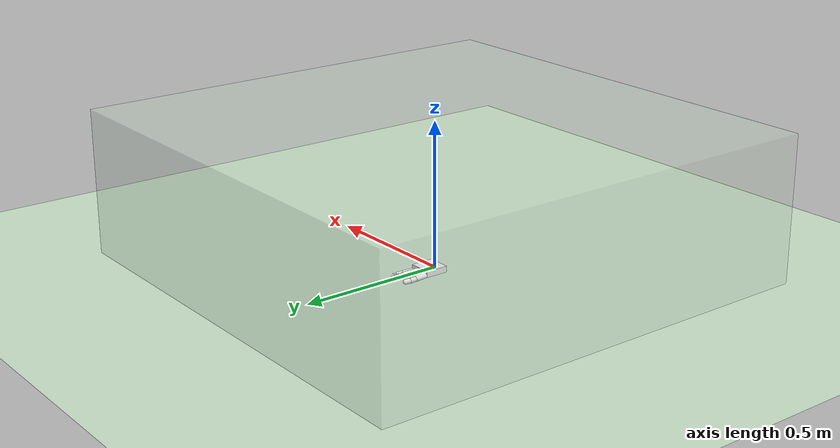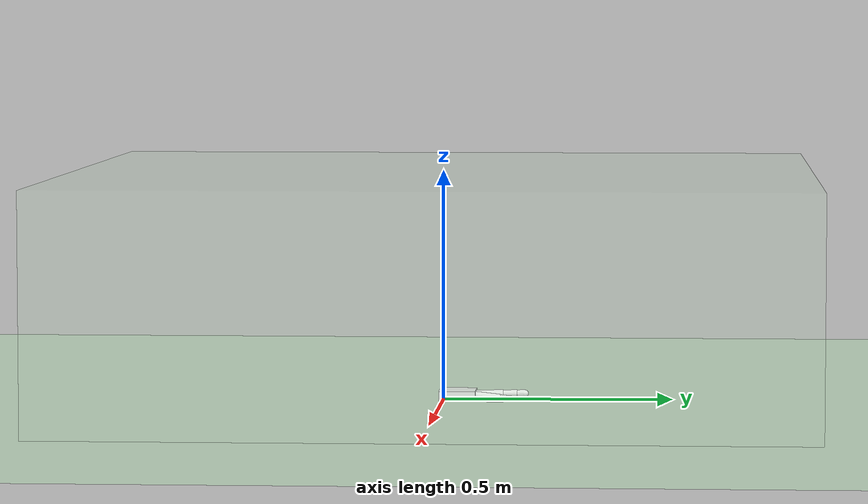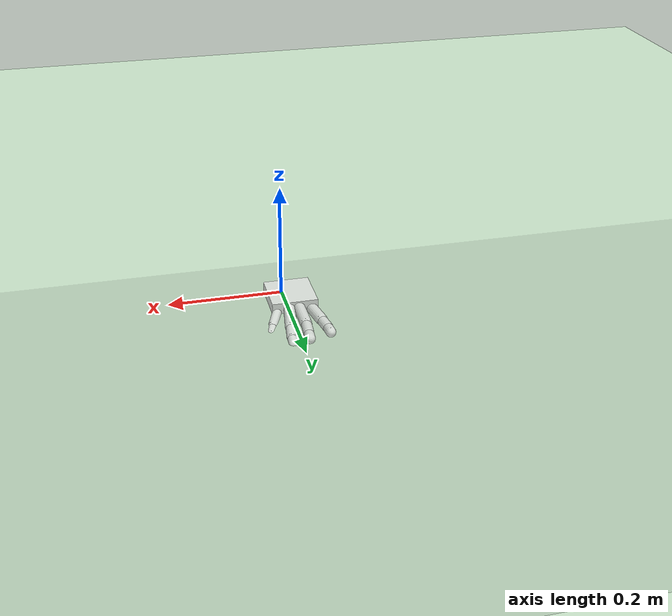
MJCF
<?xml version="1.0" encoding="utf-8"?>
<mujoco>
    <compiler angle="radian" coordinate="local"/>
    <option timestep="0.002" iterations="20" apirate="200">
        <flag warmstart="enable"/>
    </option>

    <size njmax="2000" nconmax="1000" nuser_jnt="1" nuser_site="1" nuser_tendon="1" nuser_sensor="1" nuser_actuator="16"
          nstack="600000"/>

    <visual>
        <map fogstart="3" fogend="5" force="0.1"></map>
    </visual>

    <default>
        <default class="robot0:asset_class">
            <geom friction="1 0.005 0.001" condim="3" margin="0.0005" contype="1" conaffinity="1"></geom>
            <joint limited="true" damping="0.1" armature="0.001" margin="0.01" frictionloss="0.001"></joint>
            <site size="0.005" rgba="0.4 0.9 0.4 1"></site>
            <general ctrllimited="true" forcelimited="true"></general>
        </default>
        <default class="robot0:D_Touch">
            <site type="box" size="0.009 0.004 0.013" pos="0 -0.004 0.018" rgba="0.8 0.8 0.8 0.15" group="4"></site>
        </default>
        <default class="robot0:DC_Hand">
            <geom material="robot0:MatColl" contype="1" conaffinity="0" group="1"></geom>
        </default>
        <default class="robot0:D_Vizual">
            <geom material="robot0:MatViz" contype="0" conaffinity="0" group="1" type="mesh"></geom>
        </default>
        <default class="robot0:free">
            <joint type="free" damping="0" armature="0" limited="false"></joint>
        </default>
        <default class="robot1:asset_class">
            <geom contype="1" conaffinity="1"></geom>
        </default>
        <default class="robot1:DC_Hand">
            <geom material="robot1:MatColl" contype="1" conaffinity="0" group="2"></geom>
        </default>
        <default class="robot1:D_Vizual">
            <geom material="robot1:MatViz" contype="0" conaffinity="0" group="2" type="mesh"></geom>
        </default>
        <default class="robot1:free">
            <joint type="free" damping="0" armature="0" limited="false"></joint>
        </default>
        <default class="robot2:asset_class">
            <geom contype="0" conaffinity="0"></geom>
        </default>
        <default class="robot2:DC_Hand">
            <geom material="robot2:MatColl" contype="0" conaffinity="0" group="2"></geom>
        </default>
        <default class="robot2:D_Vizual">
            <geom material="robot2:MatViz" contype="0" conaffinity="0" group="1" type="mesh"></geom>
        </default>
        <default class="robot2:free">
            <joint type="free" damping="0" armature="0" limited="false"></joint>
        </default>
    </default>

    <contact>
    </contact>

    <actuator>
    </actuator>

    <asset>
        <texture type="skybox" builtin="gradient" rgb1="0.44 0.85 0.56" rgb2="0.46 0.87 0.58" width="32" height="32"/>

        <texture name="robot0:texplane" type="2d" builtin="checker" rgb1="0.2 0.3 0.4" rgb2="0.1 0.15 0.2" width="512"
                 height="512"/>
        <texture name="robot0:texgeom" type="cube" builtin="flat" mark="cross" width="127" height="127" rgb1="0.3 0.6 0.5"
                 rgb2="0.3 0.6 0.5" markrgb="0 0 0" random="0.01"/>

        <material name="robot0:MatGnd" reflectance="0.5" texture="robot0:texplane" texrepeat="1 1" texuniform="true"/>
        <material name="robot0:MatColl" specular="1" shininess="0.3" reflectance="0.1" rgba="1.0 1.0 1.0 1.0"/>
        <material name="robot0:MatViz" specular="0.75" shininess="0.1" reflectance="0.5" rgba="0.93 0.93 0.93 1"/>
        <material name="robot1:MatGnd" reflectance="0.5" texture="robot0:texplane" texrepeat="1 1" texuniform="true"/>
        <material name="robot1:MatColl" specular="1" shininess="0.3" reflectance="0.1" rgba="1.0 1.0 1.0 1.0"/>
        <material name="robot1:MatViz" specular="0.75" shininess="0.1" reflectance="0.5" rgba="1.0 0.1 0.1 1"/>
        <material name="robot0:object" texture="robot0:texgeom" texuniform="false"/>
        <material name="floor_mat" specular="0" shininess="0.5" reflectance="0" rgba="0.2 0.2 0.2 0"/>
        <material name="MatPlane" reflectance="0.0" shininess="1" specular="1" texrepeat="60 60" texture="robot0:texplane"/>

        <mesh name="palm" file="../stls/manohand/palm_mean.stl"/>
        <mesh name="ffdist" file="../stls/manohand/ffdist_mean.stl"/>
        <mesh name="ffmiddle" file="../stls/manohand/ffmiddle_mean.stl"/>
        <mesh name="ffprox" file="../stls/manohand/ffprox_mean.stl"/>
        <mesh name="lfdist" file="../stls/manohand/lfdist_mean.stl"/>
        <mesh name="lfmiddle" file="../stls/manohand/lfmiddle_mean.stl"/>
        <mesh name="lfprox" file="../stls/manohand/lfprox_mean.stl"/>
        <mesh name="mfdist" file="../stls/manohand/mfdist_mean.stl"/>
        <mesh name="mfmiddle" file="../stls/manohand/mfmiddle_mean.stl"/>
        <mesh name="mfprox" file="../stls/manohand/mfprox_mean.stl"/>
        <mesh name="rfdist" file="../stls/manohand/rfdist_mean.stl"/>
        <mesh name="rfmiddle" file="../stls/manohand/rfmiddle_mean.stl"/>
        <mesh name="rfprox" file="../stls/manohand/rfprox_mean.stl"/>
        <mesh name="thdist" file="../stls/manohand/thdist_mean.stl"/>
        <mesh name="thmiddle" file="../stls/manohand/thmiddle_mean.stl"/>
        <mesh name="thprox" file="../stls/manohand/thprox_mean.stl"/>
    </asset>

    <worldbody>
        <camera pos="-0.0257 -0.004077 0.7" euler="1.57 0 0" fovy="42"/>
        <geom conaffinity="1" condim="3" name="floor" pos="0 0 0" rgba="0.8 0.9 0.8 1" size="100 100 .2" type="plane" material="MatPlane"/>
        <body name="table">
            <geom name="C_Table" type="box" size="0.8 0.8 0.25" rgba="0.8 0.9 0.8 0.3" pos="0 0 0.25" condim="4" contype="1" conaffinity="0" />
        </body>
        <body name="handworld" pos="0 0 0" euler="0 0 0">
            <body name="link_palm" pos="0 0 0" euler="0 0 0" childclass="robot0:asset_class">
            <joint name="robot0:slide0" type="slide" pos="0 0 0" axis="1 0 0" range="-2.0 2.0" armature="0.005"></joint>
            <joint name="robot0:slide1" type="slide" pos="0 0 0" axis="0 1 0" range="-2.0 2.0" armature="0.005"></joint>
            <joint name="robot0:slide2" type="slide" pos="0 0 0" axis="0 0 1" range="0.2 2.0" armature="0.005"></joint>
            <joint name="robot0:WRJ0" type="hinge" pos="0 0 0" axis="1 0 0" range="-3.14 3.14" armature="0.005" user="1123"></joint>
            <joint name="robot0:WRJ1" type="hinge" pos="0 0 0" axis="0 1 0" range="-1.57 1.57" armature="0.005" user="1123"></joint>
            <joint name="robot0:WRJ2" type="hinge" pos="0 0 0" axis="0 0 1" range="-3.14 3.14" armature="0.005" user="1123"></joint>
            <inertial pos="-0.03 0 0" euler="0 0 0.2" mass="0.3" diaginertia="0.001 0.001 0.001"/>
            <geom class="robot0:DC_Hand" name="robot0:C_palm0" type="box" pos="-0.01 0.03 0.005" size="0.04 0.04 0.0135" euler="0 0 0"></geom>
            <body name="link_ff_pm" quat="0.124112 -0.0723957  0.989102 0.0321224" pos="-0.0394865 0.0673819 0.0011229">
                <joint name="robot0:FFJ3x" type="hinge" pos="0 0 0" axis="1 0 0" range="-1.3 1.6" armature="0.005" user="1123"></joint>
                <joint name="robot0:FFJ3z" type="hinge" pos="0 0 0" axis="0 0 1" range="-0.35 0.3" armature="0.005" user="1123"></joint>
                <inertial pos="0 0.0228296 0" mass="0.014" diaginertia="1e-05 1e-05 1e-05"></inertial>
                <geom class="robot0:DC_Hand" name="robot0:C_FF3" type="capsule" euler="1.57 0 0" pos="0 0.0228296 0" size="0.01 0.0228296"></geom>
                <body name="link_ff_md" quat="-0.999945 0 0 -0.0104861" pos="0 0.0456592 0">
                    <inertial pos="0 0.0136348 0" mass="0.012" diaginertia="1e-05 1e-05 1e-05"></inertial>
                    <joint name="robot0:FFJ2x" type="hinge" pos="0 0 0" axis="1 0 0" range="-0.1 2.0" armature="0.005" user="1123"></joint>
                    <geom class="robot0:DC_Hand" name="robot0:C_FF2" type="capsule" euler="1.57 0 0" pos="0 0.0136348 0" size="0.009 0.0136348"></geom>
                    <body name="link_ff_dd" quat="-0.9992 0 0 -0.0399893" pos="0 0.0272696 0">
                        <inertial pos="0 0.0093181 0" mass="0.01" diaginertia="1e-05 1e-05 1e-05"></inertial>
                        <joint name="robot0:FFJ1x" type="hinge" pos="0 0 0" axis="1 0 0" range="-0.1 2.0" armature="0.005" user="1123"></joint>
                        <geom class="robot0:DC_Hand" name="robot0:C_FF1" type="capsule" euler="1.57 0 0" pos="0 0.0093181 0" size="0.0085 0.0093181"></geom>
                        <body name="link_ff_tip" pos="0.001204 0.018596 0.000187">
                            <inertial pos="0 0 0" euler="0 0 0" mass="0.001" diaginertia="1e-06 1e-06 1e-06"></inertial>
                        </body>
                    </body>
                </body>
            </body>
            <body name="link_mf_pm" quat="0.0601268 0.0089805 0.998009 0.0168109" pos="-0.017018 0.0703726 0.00635547">
                <inertial pos="0 0.02810025 0" mass="0.014" diaginertia="1e-05 1e-05 1e-05"></inertial>
                <joint name="robot0:MFJ3x" type="hinge" pos="0 0 0" axis="1 0 0" range="-1.3 1.6" armature="0.005" user="1123"></joint>
                <joint name="robot0:MFJ3z" type="hinge" pos="0 0 0" axis="0 0 1" range="-0.4 0.3" armature="0.005" user="1123"></joint>
                <geom class="robot0:DC_Hand" name="robot0:C_MF3" type="capsule" euler="1.57 0 0" pos="0 0.02810025 0" size="0.01 0.02810025"></geom>
                <body name="link_mf_md" quat="-0.999229 0 0 -0.0392598" pos="0 0.0562005 0">
                    <inertial pos="0 0.0160573 0" mass="0.012" diaginertia="1e-05 1e-05 1e-05"></inertial>
                    <joint name="robot0:MFJ2x" type="hinge" pos="0 0 0" axis="1 0 0" range="-0.1 2.0" armature="0.005" user="1123"></joint>
                    <geom class="robot0:DC_Hand" name="robot0:C_MF2" type="capsule" euler="1.57 0 0" pos="0 0.0160573 0" size="0.009 0.0160573"></geom>
                    <body name="link_mf_dd" quat="-0.999973 0 0 0.0073836" pos="0 0.0321146 0">
                        <inertial pos="0 0.00917255 0" mass="0.01" diaginertia="1e-05 1e-05 1e-05"></inertial>
                        <joint name="robot0:MFJ1x" type="hinge" pos="0 0 0" axis="1 0 0" range="-0.1 2.0" armature="0.005" user="1123"></joint>
                        <geom class="robot0:DC_Hand" name="robot0:C_MF1" type="capsule" euler="1.57 0 0" pos="0 0.00917255 0" size="0.0085 0.00917255"></geom>
                        <body name="link_mf_tip" pos="-0.000537 0.01830 0.00121">
                            <inertial pos="0 0 0" euler="0 0 0" mass="0.001" diaginertia="1e-06 1e-06 1e-06"></inertial>
                        </body>
                    </body>
                </body>
            </body>
            <body name="link_lf_pm" quat="-0.102886 0.198238 0.97371 -0.0447794" pos="0.0213338 0.0665155 0.000943775">
                <joint name="robot0:LFJ3x" type="hinge" pos="0 0 0" axis="1 0 0" range="-1.3 1.6" armature="0.005" user="1123"></joint>
                <joint name="robot0:LFJ3z" type="hinge" pos="0 0 0" axis="0 0 1" range="-0.65 0.2" armature="0.005" user="1123"></joint>
                <inertial pos="0 0.01892845 0" mass="0.07" diaginertia="0.0005 0.0005 0.0005"/>
                <geom class="robot0:DC_Hand" name="robot0:C_LF3" type="capsule" euler="1.57 0 0" pos="0 0.01892845 0" size="0.008 0.01892845"></geom>
                <body name="link_lf_md" quat="-0.99963 0 0 0.0271924" pos="0 0.0378569 0">
                    <inertial pos="0 0.0111746 0" mass="0.06" diaginertia="0.0005 0.0005 0.0005"/>
                    <joint name="robot0:LFJ2x" type="hinge" pos="0 0 0" axis="1 0 0" range="-0.1 2.0" armature="0.005" user="1123"></joint>
                    <geom class="robot0:DC_Hand" name="robot0:C_LF2" type="capsule" euler="1.57 0 0" pos="0 0.0111746 0" size="0.007 0.0111746"></geom>
                    <body name="link_lf_dd" quat="-0.999229 0 0 0.0392598" pos="0 0.0223492 0">
                        <inertial pos="0 0.007704 0" mass="0.05" diaginertia="0.0005 0.0005 0.0005"/>
                        <joint name="robot0:LFJ1x" type="hinge" pos="0 0 0" axis="1 0 0" range="-0.1 2.0" armature="0.005" user="1123"></joint>
                        <geom class="robot0:DC_Hand" name="robot0:C_LF1" type="capsule" euler="1.57 0 0" pos="0 0.007704 0" size="0.006 0.007704"></geom>
                        <body name="link_lf_tip" pos="0.0002265 0.01531 0.001613">
                            <inertial pos="0 0 0" euler="0 0 0" mass="0.001" diaginertia="1e-06 1e-06 1e-06"></inertial>
                        </body>
                    </body>
                </body>
            </body>
            <body name="link_rf_pm" quat="-0.00348342 0.0794858 0.995874 -0.0436436" pos="0.000347831 0.0693786 0.00601275">
                <joint name="robot0:RFJ3x" type="hinge" pos="0 0 0" axis="1 0 0" range="-1.3 1.6" armature="0.005" user="1123"></joint>
                <joint name="robot0:RFJ3z" type="hinge" pos="0 0 0" axis="0 0 1" range="-0.3 0.1" armature="0.005" user="1123"></joint>
                <inertial pos="0 0.02588765 0" mass="0.014" diaginertia="1e-05 1e-05 1e-05"></inertial>
                <geom class="robot0:DC_Hand" name="robot0:C_RF3" type="capsule" euler="1.57 0 0" pos="0 0.02588765 0" size="0.01 0.02588765"></geom>
                <body name="link_rf_md" quat="-0.999981 0 0 0.00624612" pos="0 0.0517753 0">
                    <inertial pos="0 0.01479295 0" mass="0.012" diaginertia="1e-05 1e-05 1e-05"></inertial>
                    <joint name="robot0:RFJ2x" type="hinge" pos="0 0 0" axis="1 0 0" range="-0.1 2.0" armature="0.005" user="1123"></joint>
                    <geom class="robot0:DC_Hand" name="robot0:C_RF2" type="capsule" euler="1.57 0 0" pos="0 0.01479295 0" size="0.009 0.01479295"></geom>
                    <body name="link_rf_dd" quat="-0.999229 0 0 0.0392598" pos="0 0.0295859 0">
                        <inertial pos="0 0.0084531 0" mass="0.01" diaginertia="1e-05 1e-05 1e-05"></inertial>
                        <joint name="robot0:RFJ1x" type="hinge" pos="0 0 0" axis="1 0 0" range="-0.1 2.0" armature="0.005" user="1123"></joint>
                        <geom class="robot0:DC_Hand" name="robot0:C_RF1" type="capsule" euler="1.57 0 0" pos="0 0.0084531 0" size="0.0085 0.0084531"></geom>
                        <body name="link_rf_tip" pos="0.000591 0.01678 0.001933">
                            <inertial pos="0 0 0" euler="0 0 0" mass="0.001" diaginertia="1e-06 1e-06 1e-06"></inertial>
                        </body>
                    </body>
                </body>
            </body>
            <body name="link_th_pm" quat="-0.563478 0.172425  0.648492 -0.481892" pos="-0.0194548 0.00353334 -0.00776414">
                <joint name="robot0:THJ3x" type="hinge" pos="0 0 0" axis="1 0 0" range="-0.5 1.0" armature="0.005" user="1123"></joint>
                <joint name="robot0:THJ3z" type="hinge" pos="0 0 0" axis="0 0 1" range="-1.0 0.1" armature="0.005" user="1123"></joint>
                <inertial pos="0 0.02441495 0" mass="0.016" diaginertia="1e-05 1e-05 1e-05"></inertial>
                <geom class="robot0:DC_Hand" name="robot0:C_TH3" euler="1.57 0 0" type="capsule" pos="0 0.02441495 0" size="0.013 0.02441495"></geom>
                <body name="link_th_md" quat="-0.994276 0.0997603 -0.00381833 0.0380559" pos="0 0.0488299 0">
                    <joint name="robot0:THJ2x" type="hinge" pos="0 0 0" axis="1 0 0" range="-0.9 0.2" armature="0.005" user="1123"></joint>
                    <inertial pos="0 0.01749035 0" mass="0.014" diaginertia="1e-05 1e-05 1e-05"></inertial>
                    <geom class="robot0:DC_Hand" name="robot0:C_TH2" type="capsule" euler="1.57 0 0" pos="0 0.01749035 0" size="0.011 0.01749035"></geom>
                    <body name="link_th_dd" quat="-0.994683 0.0998011 0.00253618 -0.0252774" pos="0 0.0349807 0">
                        <joint name="robot0:THJ1x" type="hinge" pos="0 0 0" axis="1 0 0" range="-0.9 0.1" armature="0.005" user="1123"></joint>
                        <inertial pos="0 0.01241705 0" mass="0.012" diaginertia="1e-05 1e-05 1e-05"></inertial>
                        <geom class="robot0:DC_Hand" name="robot0:C_TH1" type="capsule" euler="1.57 0 0" pos="0 0.01241705 0" size="0.009 0.01241705"></geom>
                        <body name="link_th_tip" pos="0 0.01601 0.001388">
                            <inertial pos="0 0 0" euler="0 0 0" mass="0.001" diaginertia="1e-06 1e-06 1e-06"></inertial>
                        </body>
                    </body>
                </body>
            </body>
        </body>
        </body>
        <body name="handworld1" pos="0 0 0" euler="0 0 0">
            <body name="ref_link_palm" pos="0 0 0" euler="0 0 0" childclass="robot1:asset_class">
            <joint name="robot1:slide0" type="slide" pos="0 0 0" axis="1 0 0" range="-2.0 2.0" armature="0.005"></joint>
            <joint name="robot1:slide1" type="slide" pos="0 0 0" axis="0 1 0" range="-2.0 2.0" armature="0.005"></joint>
            <joint name="robot1:slide2" type="slide" pos="0 0 0" axis="0 0 1" range="0.2 2.0" armature="0.005"></joint>
            <joint name="robot1:WRJ0" type="hinge" pos="0 0 0" axis="1 0 0" range="-3.14 3.14" armature="0.005" user="1123"></joint>
            <joint name="robot1:WRJ1" type="hinge" pos="0 0 0" axis="0 1 0" range="-1.57 1.57" armature="0.005" user="1123"></joint>
            <joint name="robot1:WRJ2" type="hinge" pos="0 0 0" axis="0 0 1" range="-3.14 3.14" armature="0.005" user="1123"></joint>
            <inertial pos="-0.03 0 0" euler="0 0 0.2" mass="0.3" diaginertia="0.001 0.001 0.001"/>
            <geom class="robot1:DC_Hand" name="robot1:C_palm0" type="box" pos="-0.01 0.03 0.005" size="0.04 0.04 0.0135" euler="0 0 0"></geom>
            <body name="ref_link_ff_pm" quat="0.124112 -0.0723957  0.989102 0.0321224" pos="-0.0394865 0.0673819 0.0011229">
                <joint name="robot1:FFJ3x" type="hinge" pos="0 0 0" axis="1 0 0" range="-1.3 1.6" armature="0.005" user="1123"></joint>
                <joint name="robot1:FFJ3z" type="hinge" pos="0 0 0" axis="0 0 1" range="-0.35 0.3" armature="0.005" user="1123"></joint>
                <inertial pos="0 0.0228296 0" mass="0.014" diaginertia="1e-05 1e-05 1e-05"></inertial>
                <geom class="robot1:DC_Hand" name="robot1:C_FF3" type="capsule" euler="1.57 0 0" pos="0 0.0228296 0" size="0.01 0.0228296"></geom>
                <body name="ref_link_ff_md" quat="-0.999945 0 0 -0.0104861" pos="0 0.0456592 0">
                    <inertial pos="0 0.0136348 0" mass="0.012" diaginertia="1e-05 1e-05 1e-05"></inertial>
                    <joint name="robot1:FFJ2x" type="hinge" pos="0 0 0" axis="1 0 0" range="-0.1 2.0" armature="0.005" user="1123"></joint>
                    <geom class="robot1:DC_Hand" name="robot1:C_FF2" type="capsule" euler="1.57 0 0" pos="0 0.0136348 0" size="0.009 0.0136348"></geom>
                    <body name="ref_link_ff_dd" quat="-0.9992 0 0 -0.0399893" pos="0 0.0272696 0">
                        <inertial pos="0 0.0093181 0" mass="0.01" diaginertia="1e-05 1e-05 1e-05"></inertial>
                        <joint name="robot1:FFJ1x" type="hinge" pos="0 0 0" axis="1 0 0" range="-0.1 2.0" armature="0.005" user="1123"></joint>
                        <geom class="robot1:DC_Hand" name="robot1:C_FF1" type="capsule" euler="1.57 0 0" pos="0 0.0093181 0" size="0.0085 0.0093181"></geom>
                        <body name="ref_link_ff_tip" pos="0.001204 0.018596 0.000187">
                            <inertial pos="0 0 0" euler="0 0 0" mass="0.001" diaginertia="1e-06 1e-06 1e-06"></inertial>
                        </body>
                    </body>
                </body>
            </body>
            <body name="ref_link_mf_pm" quat="0.0601268 0.0089805 0.998009 0.0168109" pos="-0.017018 0.0703726 0.00635547">
                <inertial pos="0 0.02810025 0" mass="0.014" diaginertia="1e-05 1e-05 1e-05"></inertial>
                <joint name="robot1:MFJ3x" type="hinge" pos="0 0 0" axis="1 0 0" range="-1.3 1.6" armature="0.005" user="1123"></joint>
                <joint name="robot1:MFJ3z" type="hinge" pos="0 0 0" axis="0 0 1" range="-0.4 0.3" armature="0.005" user="1123"></joint>
                <geom class="robot1:DC_Hand" name="robot1:C_MF3" type="capsule" euler="1.57 0 0" pos="0 0.02810025 0" size="0.01 0.02810025"></geom>
                <body name="ref_link_mf_md" quat="-0.999229 0 0 -0.0392598" pos="0 0.0562005 0">
                    <inertial pos="0 0.0160573 0" mass="0.012" diaginertia="1e-05 1e-05 1e-05"></inertial>
                    <joint name="robot1:MFJ2x" type="hinge" pos="0 0 0" axis="1 0 0" range="-0.1 2.0" armature="0.005" user="1123"></joint>
                    <geom class="robot1:DC_Hand" name="robot1:C_MF2" type="capsule" euler="1.57 0 0" pos="0 0.0160573 0" size="0.009 0.0160573"></geom>
                    <body name="ref_link_mf_dd" quat="-0.999973 0 0 0.0073836" pos="0 0.0321146 0">
                        <inertial pos="0 0.00917255 0" mass="0.01" diaginertia="1e-05 1e-05 1e-05"></inertial>
                        <joint name="robot1:MFJ1x" type="hinge" pos="0 0 0" axis="1 0 0" range="-0.1 2.0" armature="0.005" user="1123"></joint>
                        <geom class="robot1:DC_Hand" name="robot1:C_MF1" type="capsule" euler="1.57 0 0" pos="0 0.00917255 0" size="0.0085 0.00917255"></geom>
                        <body name="ref_link_mf_tip" pos="-0.000537 0.01830 0.00121">
                            <inertial pos="0 0 0" euler="0 0 0" mass="0.001" diaginertia="1e-06 1e-06 1e-06"></inertial>
                        </body>
                    </body>
                </body>
            </body>
            <body name="ref_link_lf_pm" quat="-0.102886 0.198238 0.97371 -0.0447794" pos="0.0213338 0.0665155 0.000943775">
                <joint name="robot1:LFJ3x" type="hinge" pos="0 0 0" axis="1 0 0" range="-1.3 1.6" armature="0.005" user="1123"></joint>
                <joint name="robot1:LFJ3z" type="hinge" pos="0 0 0" axis="0 0 1" range="-0.65 0.2" armature="0.005" user="1123"></joint>
                <inertial pos="0 0.01892845 0" mass="0.07" diaginertia="0.0005 0.0005 0.0005"/>
                <geom class="robot1:DC_Hand" name="robot1:C_LF3" type="capsule" euler="1.57 0 0" pos="0 0.01892845 0" size="0.008 0.01892845"></geom>
                <body name="ref_link_lf_md" quat="-0.99963 0 0 0.0271924" pos="0 0.0378569 0">
                    <inertial pos="0 0.0111746 0" mass="0.06" diaginertia="0.0005 0.0005 0.0005"/>
                    <joint name="robot1:LFJ2x" type="hinge" pos="0 0 0" axis="1 0 0" range="-0.1 2.0" armature="0.005" user="1123"></joint>
                    <geom class="robot1:DC_Hand" name="robot1:C_LF2" type="capsule" euler="1.57 0 0" pos="0 0.0111746 0" size="0.007 0.0111746"></geom>
                    <body name="ref_link_lf_dd" quat="-0.999229 0 0 0.0392598" pos="0 0.0223492 0">
                        <inertial pos="0 0.007704 0" mass="0.05" diaginertia="0.0005 0.0005 0.0005"/>
                        <joint name="robot1:LFJ1x" type="hinge" pos="0 0 0" axis="1 0 0" range="-0.1 2.0" armature="0.005" user="1123"></joint>
                        <geom class="robot1:DC_Hand" name="robot1:C_LF1" type="capsule" euler="1.57 0 0" pos="0 0.007704 0" size="0.006 0.007704"></geom>
                        <body name="ref_link_lf_tip" pos="0.0002265 0.01531 0.001613">
                            <inertial pos="0 0 0" euler="0 0 0" mass="0.001" diaginertia="1e-06 1e-06 1e-06"></inertial>
                        </body>
                    </body>
                </body>
            </body>
            <body name="ref_link_rf_pm" quat="-0.00348342 0.0794858 0.995874 -0.0436436" pos="0.000347831 0.0693786 0.00601275">
                <joint name="robot1:RFJ3x" type="hinge" pos="0 0 0" axis="1 0 0" range="-1.3 1.6" armature="0.005" user="1123"></joint>
                <joint name="robot1:RFJ3z" type="hinge" pos="0 0 0" axis="0 0 1" range="-0.3 0.1" armature="0.005" user="1123"></joint>
                <inertial pos="0 0.02588765 0" mass="0.014" diaginertia="1e-05 1e-05 1e-05"></inertial>
                <geom class="robot1:DC_Hand" name="robot1:C_RF3" type="capsule" euler="1.57 0 0" pos="0 0.02588765 0" size="0.01 0.02588765"></geom>
                <body name="ref_link_rf_md" quat="-0.999981 0 0 0.00624612" pos="0 0.0517753 0">
                    <inertial pos="0 0.01479295 0" mass="0.012" diaginertia="1e-05 1e-05 1e-05"></inertial>
                    <joint name="robot1:RFJ2x" type="hinge" pos="0 0 0" axis="1 0 0" range="-0.1 2.0" armature="0.005" user="1123"></joint>
                    <geom class="robot1:DC_Hand" name="robot1:C_RF2" type="capsule" euler="1.57 0 0" pos="0 0.01479295 0" size="0.009 0.01479295"></geom>
                    <body name="ref_link_rf_dd" quat="-0.999229 0 0 0.0392598" pos="0 0.0295859 0">
                        <inertial pos="0 0.0084531 0" mass="0.01" diaginertia="1e-05 1e-05 1e-05"></inertial>
                        <joint name="robot1:RFJ1x" type="hinge" pos="0 0 0" axis="1 0 0" range="-0.1 2.0" armature="0.005" user="1123"></joint>
                        <geom class="robot1:DC_Hand" name="robot1:C_RF1" type="capsule" euler="1.57 0 0" pos="0 0.0084531 0" size="0.0085 0.0084531"></geom>
                        <body name="ref_link_rf_tip" pos="0.000591 0.01678 0.001933">
                            <inertial pos="0 0 0" euler="0 0 0" mass="0.001" diaginertia="1e-06 1e-06 1e-06"></inertial>
                        </body>
                    </body>
                </body>
            </body>
            <body name="ref_link_th_pm" quat="-0.563478 0.172425  0.648492 -0.481892" pos="-0.0194548 0.00353334 -0.00776414">
                <joint name="robot1:THJ3x" type="hinge" pos="0 0 0" axis="1 0 0" range="-0.5 1.0" armature="0.005" user="1123"></joint>
                <joint name="robot1:THJ3z" type="hinge" pos="0 0 0" axis="0 0 1" range="-1.0 0.1" armature="0.005" user="1123"></joint>
                <inertial pos="0 0.02441495 0" mass="0.016" diaginertia="1e-05 1e-05 1e-05"></inertial>
                <geom class="robot1:DC_Hand" name="robot1:C_TH3" euler="1.57 0 0" type="capsule" pos="0 0.02441495 0" size="0.013 0.02441495"></geom>
                <body name="ref_link_th_md" quat="-0.994276 0.0997603 -0.00381833 0.0380559" pos="0 0.0488299 0">
                    <joint name="robot1:THJ2x" type="hinge" pos="0 0 0" axis="1 0 0" range="-0.9 0.2" armature="0.005" user="1123"></joint>
                    <inertial pos="0 0.01749035 0" mass="0.014" diaginertia="1e-05 1e-05 1e-05"></inertial>
                    <geom class="robot1:DC_Hand" name="robot1:C_TH2" type="capsule" euler="1.57 0 0" pos="0 0.01749035 0" size="0.011 0.01749035"></geom>
                    <body name="ref_link_th_dd" quat="-0.994683 0.0998011 0.00253618 -0.0252774" pos="0 0.0349807 0">
                        <joint name="robot1:THJ1x" type="hinge" pos="0 0 0" axis="1 0 0" range="-0.9 0.1" armature="0.005" user="1123"></joint>
                        <inertial pos="0 0.01241705 0" mass="0.012" diaginertia="1e-05 1e-05 1e-05"></inertial>
                        <geom class="robot1:DC_Hand" name="robot1:C_TH1" type="capsule" euler="1.57 0 0" pos="0 0.01241705 0" size="0.009 0.01241705"></geom>
                        <body name="ref_link_th_tip" pos="0 0.01601 0.001388">
                            <inertial pos="0 0 0" euler="0 0 0" mass="0.001" diaginertia="1e-06 1e-06 1e-06"></inertial>
                        </body>
                    </body>
                </body>
            </body>
        </body>
        </body>
        <light directional="true" ambient="0.2 0.2 0.2" diffuse="0.8 0.8 0.8" specular="0.3 0.3 0.3" castshadow="false"
               pos="0 1 4" dir="0 0 -1" name="light0"/>
    </worldbody>
</mujoco>
